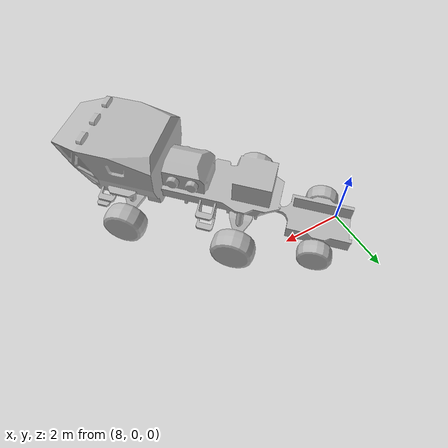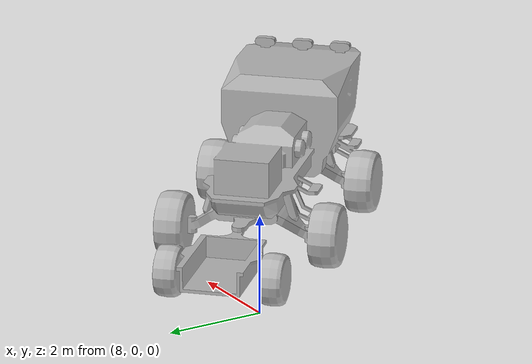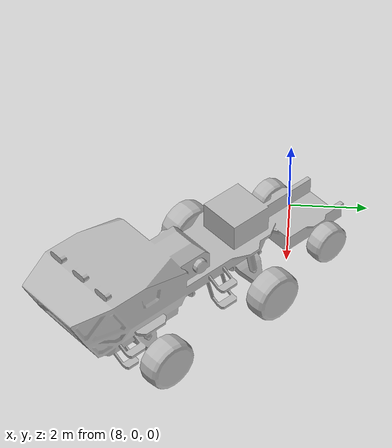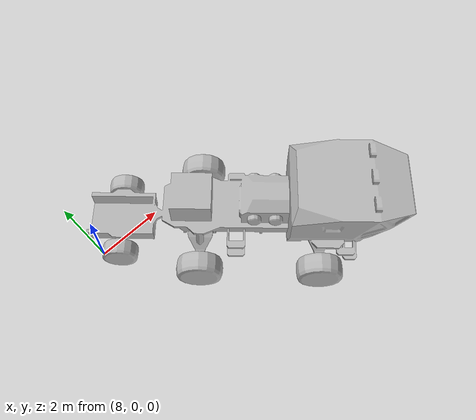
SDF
<sdf version="1.6">
 <world name="SRC_finals">
  <include>
   <pose>11.931237453452658
        -2.6438198728111675
        0
        0
        0
        0.785398163397448</pose>
   <uri>model://mars_explorer</uri>
  </include>
 </world>
</sdf>
